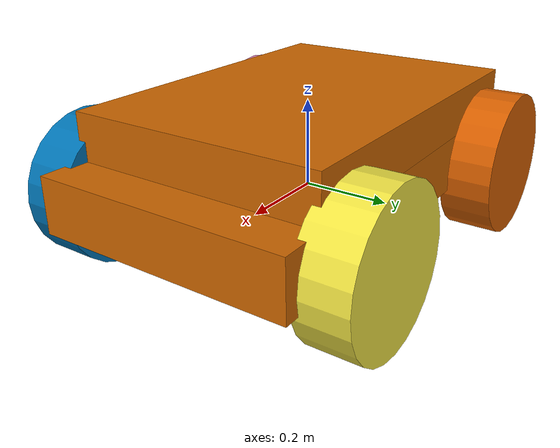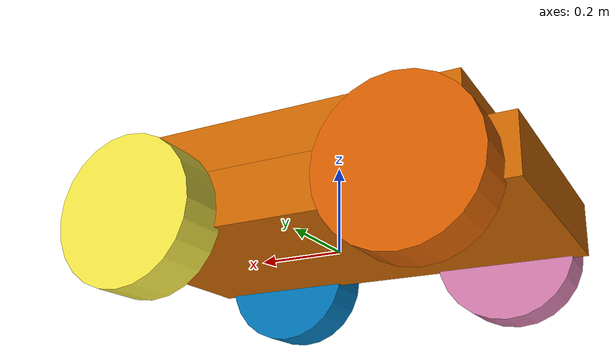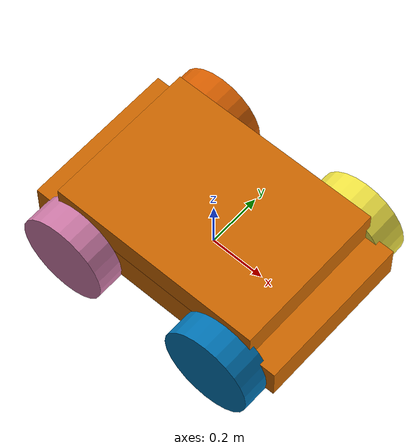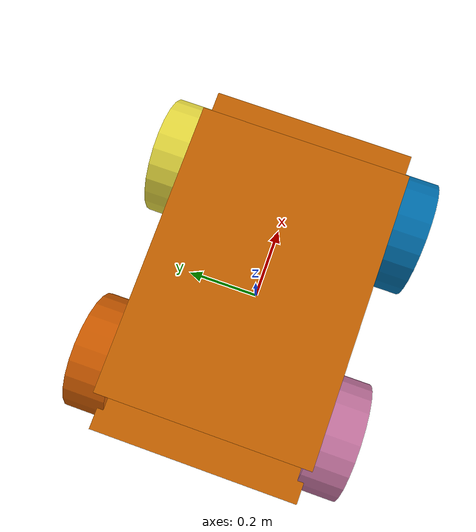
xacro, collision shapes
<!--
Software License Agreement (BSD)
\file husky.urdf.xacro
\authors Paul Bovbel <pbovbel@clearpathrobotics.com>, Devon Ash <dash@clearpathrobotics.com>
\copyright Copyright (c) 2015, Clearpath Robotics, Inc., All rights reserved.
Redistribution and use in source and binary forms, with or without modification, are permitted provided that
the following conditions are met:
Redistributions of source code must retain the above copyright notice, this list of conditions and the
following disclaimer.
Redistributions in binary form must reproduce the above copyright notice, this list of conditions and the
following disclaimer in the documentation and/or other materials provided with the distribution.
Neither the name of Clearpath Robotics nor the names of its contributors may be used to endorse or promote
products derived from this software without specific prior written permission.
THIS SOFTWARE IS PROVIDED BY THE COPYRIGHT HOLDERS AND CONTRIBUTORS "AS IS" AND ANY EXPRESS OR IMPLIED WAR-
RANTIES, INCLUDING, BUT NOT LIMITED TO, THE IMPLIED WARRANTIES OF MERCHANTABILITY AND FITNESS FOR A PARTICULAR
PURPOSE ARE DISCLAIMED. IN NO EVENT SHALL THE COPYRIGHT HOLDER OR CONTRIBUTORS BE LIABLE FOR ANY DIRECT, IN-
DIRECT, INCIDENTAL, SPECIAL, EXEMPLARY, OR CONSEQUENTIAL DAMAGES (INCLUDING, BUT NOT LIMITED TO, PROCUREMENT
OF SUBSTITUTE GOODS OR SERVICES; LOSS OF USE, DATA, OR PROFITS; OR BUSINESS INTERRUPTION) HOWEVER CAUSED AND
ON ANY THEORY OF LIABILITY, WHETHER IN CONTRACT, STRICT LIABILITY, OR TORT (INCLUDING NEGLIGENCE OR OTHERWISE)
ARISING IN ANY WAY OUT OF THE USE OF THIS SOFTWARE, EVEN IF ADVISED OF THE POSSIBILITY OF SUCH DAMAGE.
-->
<?xml version="1.0"?>
<robot name="husky" xmlns:xacro="http://ros.org/wiki/xacro">

  <xacro:property name="husky_front_bumper_extend" value="$(optenv HUSKY_FRONT_BUMPER_EXTEND 0)" />
  <xacro:property name="husky_rear_bumper_extend" value="$(optenv HUSKY_REAR_BUMPER_EXTEND 0)" />

  <xacro:arg name="robot_namespace" default="$(optenv ROBOT_NAMESPACE /)" />
  <xacro:arg name="urdf_extras" default="$(optenv HUSKY_URDF_EXTRAS empty.urdf)" />
  <xacro:arg name="cpr_urdf_extras" default="$(optenv CPR_URDF_EXTRAS empty.urdf)" />

  <!-- Included URDF/XACRO Files -->
  <xacro:include filename="$(find husky_description)/urdf/decorations.urdf.xacro" />
  <xacro:include filename="$(find husky_description)/urdf/wheel.urdf.xacro" />

  <xacro:property name="M_PI" value="3.14159"/>
  <xacro:property name="M_PI2" value="1.570795"/>

  <!-- Base Size -->
  <xacro:property name="base_x_size" value="0.98740000" />
  <xacro:property name="base_y_size" value="0.57090000" />
  <xacro:property name="base_z_size" value="0.24750000" />

  <!-- Wheel Mounting Positions -->
  <xacro:property name="wheelbase" value="0.6" />
  <xacro:property name="track" value="0.65" />
  <xacro:property name="wheel_vertical_offset" value="0.03282" />

  <!-- Wheel Properties -->
  <xacro:property name="wheel_length" value="0.1143" />
  <xacro:property name="wheel_radius" value="0.1651" />

  <material name="blue">
    <color rgba="0 0 1 1"/>
  </material>
  <!-- Base link is the center of the robot's bottom plate -->
  <link name="base_link">
    <visual>
      <origin xyz="-0.15 0.11 0.2" rpy="1.7 0 ${M_PI2}" />
      <geometry>
        <mesh filename="package://husky_description/meshes/kae.stl" scale="0.002 0.002 0.002" />
      </geometry>
      <material name="orange">
        <color rgba="0.8 0.4 0.0 1.0"/>
      </material>
    </visual>
    <collision>
      <origin xyz="${( husky_front_bumper_extend - husky_rear_bumper_extend ) / 2.0} 0 ${base_z_size/4}" rpy="0 0 0" />
      <geometry>
        <box size="${ base_x_size + husky_front_bumper_extend + husky_rear_bumper_extend } ${base_y_size} ${base_z_size/2}"/>
      </geometry>
    </collision>
    <collision>
      <origin xyz="0 0 ${base_z_size*3/4-0.01}" rpy="0 0 0" />
      <geometry>
        <box size="${base_x_size*4/5} ${base_y_size} ${base_z_size/2-0.02}"/>
      </geometry>
    </collision>
  </link>
  <gazebo reference="base_link">
    <material>Gazebo/Gray</material>
  </gazebo>
  <!-- Base footprint is on the ground under the robot -->
  <link name="base_footprint"/>

  <joint name="base_footprint_joint" type="fixed">
    <origin xyz="0 0 ${wheel_vertical_offset - wheel_radius}" rpy="0 0 0" />
    <parent link="base_link" />
    <child link="base_footprint" />
  </joint>

  <!-- Inertial link stores the robot's inertial information -->
  <link name="inertial_link">
    <inertial>
      <mass value="46.034" />
      <origin xyz="-0.00065 -0.085 0.062" />
      <inertia ixx="0.6022" ixy="-0.02364" ixz="-0.1197" iyy="1.7386" iyz="-0.001544" izz="2.0296" />
    </inertial>
  </link>

  <joint name="inertial_joint" type="fixed">
    <origin xyz="0 0 0" rpy="0 0 0" />
    <parent link="base_link" />
    <child link="inertial_link" />
  </joint>

  <!-- Husky wheel macros -->
  <xacro:husky_wheel wheel_prefix="front_left">
    <origin xyz="${wheelbase/2} ${track/2} ${wheel_vertical_offset}" rpy="0 0 0" />
  </xacro:husky_wheel>
  <xacro:husky_wheel wheel_prefix="front_right">
    <origin xyz="${wheelbase/2} ${-track/2} ${wheel_vertical_offset}" rpy="0 0 0" />
  </xacro:husky_wheel>
  <xacro:husky_wheel wheel_prefix="rear_left">
    <origin xyz="${-wheelbase/2} ${track/2} ${wheel_vertical_offset}" rpy="0 0 0" />
  </xacro:husky_wheel>
  <xacro:husky_wheel wheel_prefix="rear_right">
    <origin xyz="${-wheelbase/2} ${-track/2} ${wheel_vertical_offset}" rpy="0 0 0" />
  </xacro:husky_wheel>

  <xacro:husky_decorate />

  <gazebo>
    <plugin name="gazebo_ros_control" filename="libgazebo_ros_control.so">
      <robotNamespace>$(arg robot_namespace)</robotNamespace>
      <legacyModeNS>true</legacyModeNS>
    </plugin>
  </gazebo>

  <link name="camera_link">

      <collision>
        <origin xyz="0 0 0" rpy="0 0 0" />
        <geometry>
          <mesh filename="package://husky_description/meshes/camera.stl" scale="0.0001 0.0001 0.0001"/>

        </geometry>
      </collision>

      <visual>
        <origin xyz="0.35 0 0.2" rpy="0 0 0" />
        <geometry>
          <mesh filename="package://husky_description/meshes/camera.stl" scale="0.0001 0.0001 0.0001"/>
        </geometry>
        <material name="grey">
            <color rgba="0.2 0.2 0.2 1.0"/>
        </material>
      </visual>

      <inertial>
        <mass value="0.001" />
        <origin xyz="0 0 0" rpy="0 0 0" />
        <inertia ixx="0.0001" ixy="0" ixz="0" iyy="0.0001" iyz="0" izz="0.0001" />
      </inertial>

    </link>

    <joint name="camera_joint" type="fixed">
        <parent link="base_link"/>
        <child link="camera_link"/>
        <origin rpy="0 0 0" xyz="0.047 0.0 0.0"/>
        <axis xyz="1 0 0" />
    </joint>

  <gazebo reference="camera_link">
      <material>Gazebo/Blue</material>
      <sensor type="camera" name="camera_camera_sensor">
        <update_rate>30.0</update_rate>
        <camera>
          <pose>0.35 0.1 0.25 0 0 0</pose>
          <horizontal_fov>${85 * M_PI/180.0}</horizontal_fov>
          <image>
            <format>R8G8B8</format>
            <width>4000</width>
            <height>3000</height>
          </image>
          <clip>
            <near>0.01</near>
            <far>100</far>
          </clip>
        </camera>

        <plugin name="camera_camera_controller" filename="libgazebo_ros_camera.so">
          <alwaysOn>true</alwaysOn>
          <updateRate>0.0</updateRate>
          <cameraName>arm_sensor/camera</cameraName>
          <imageTopicName>image_raw</imageTopicName>
          <cameraInfoTopicName>camera_info</cameraInfoTopicName>
          <frameName>camera_link</frameName>
          <hackBaseline>0.07</hackBaseline>
          <distortionK1>0.0</distortionK1>
          <distortionK2>0.0</distortionK2>
          <distortionK3>0.0</distortionK3>
          <distortionT1>0.0</distortionT1>
          <distortionT2>0.0</distortionT2>
        </plugin>
      </sensor>
    </gazebo>

</robot>

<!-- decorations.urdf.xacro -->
<robot name="husky_decorations" xmlns:xacro="http://ros.org/wiki/xacro">

  <material name="dark_grey"><color rgba="0.2 0.2 0.2 1.0" /></material>
  <material name="medium_grey"><color rgba="0.6 0.6 0.6 1.0" /></material>
  <material name="light_grey"><color rgba="0.8 0.8 0.8 1.0" /></material>
  <material name="yellow"><color rgba="0.8 0.8 0.0 1.0" /></material>
  <material name="black"><color rgba="0.15 0.15 0.15 1.0" /></material>
  <material name="white"><color rgba="1.0 1.0 1.0 1.0" /></material>
  <material name="red"><color rgba="1.0 0.0 0.0 1.0" /></material>

  <xacro:macro name="husky_decorate">

  </xacro:macro>

</robot>

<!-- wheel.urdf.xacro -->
<robot xmlns:xacro="http://ros.org/wiki/xacro" name="husky_wheel">

	<xacro:macro name="husky_wheel" params="wheel_prefix *joint_pose">
		<link name="${wheel_prefix}_wheel_link">
			<inertial>
				<mass value="2.637" />
				<origin xyz="0 0 0" />
				<inertia  ixx="0.02467" ixy="0" ixz="0" iyy="0.04411" iyz="0" izz="0.02467" />
			</inertial>
			<visual>
				<origin xyz="0 0 0" rpy="0 0 0" />
				<geometry>
					<mesh filename="package://husky_description/meshes/wheel.dae" scale="0.8 0.8 0.8"/>
				</geometry>
			</visual>
			<collision>
				<origin xyz="0 0 0" rpy="${M_PI/2} 0 0" />
				<geometry>
					<cylinder length="${wheel_length}" radius="${wheel_radius}" />
				</geometry>
			</collision>
		</link>

		<joint name="${wheel_prefix}_wheel" type="continuous">
			<parent link="base_link"/>
			<child link="${wheel_prefix}_wheel_link"/>
			<xacro:insert_block name="joint_pose"/>
			<axis xyz="0 1 0" rpy="0 0 0" />
		</joint>

		<transmission name="${wheel_prefix}_wheel_trans" type="SimpleTransmission">
			<type>transmission_interface/SimpleTransmission</type>
			<actuator name="${wheel_prefix}_wheel_motor">
				<mechanicalReduction>1</mechanicalReduction>
			</actuator>
			<joint name="${wheel_prefix}_wheel">
				<hardwareInterface>hardware_interface/VelocityJointInterface</hardwareInterface>
			</joint>
		</transmission>

	</xacro:macro>
</robot>
